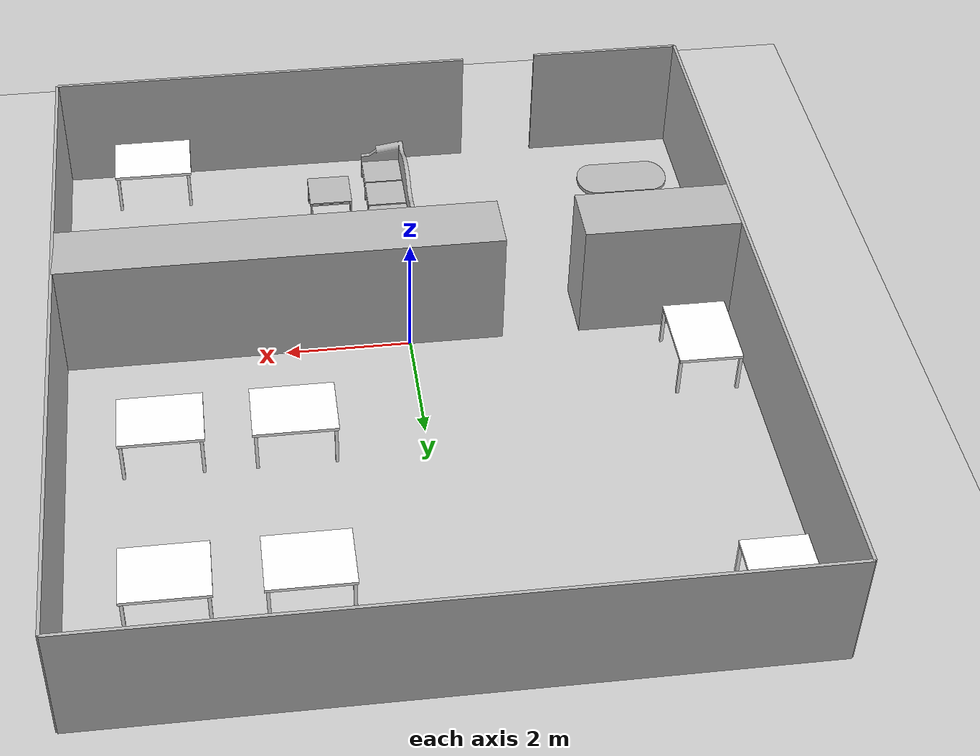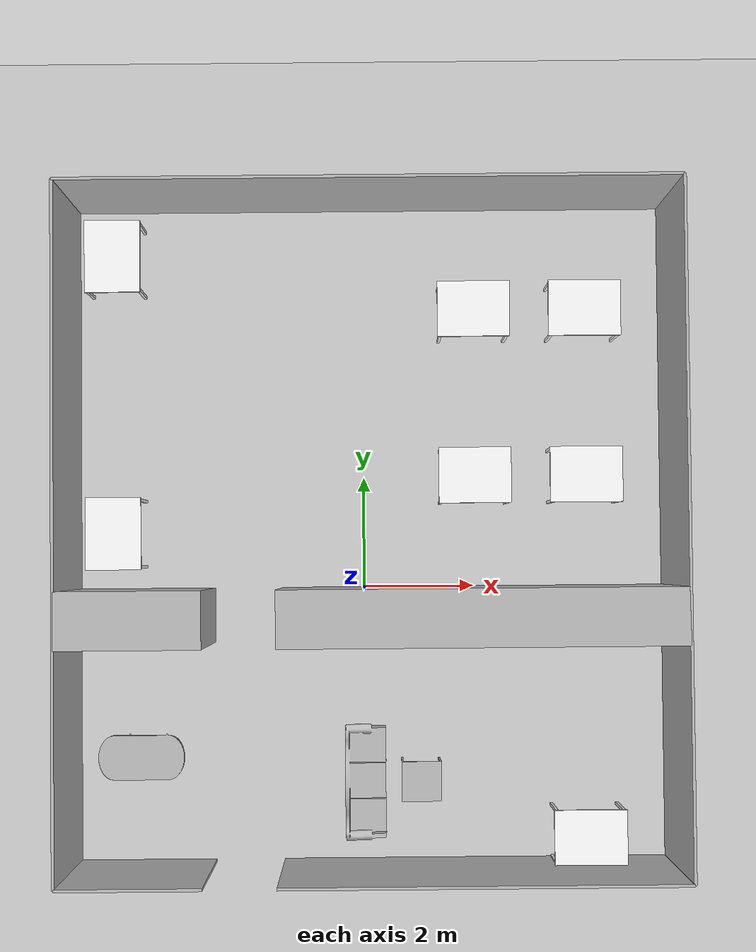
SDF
<sdf version="1.5">
 <world name="hri_hk_studio_world">
  <include><uri>model://sun</uri></include>
  <include><uri>model://ground_plane</uri></include>
  <include><uri>model://hri_hk_studio</uri><pose>2 -5 0 0 0 0</pose></include>
  <include><uri>model://hri_dinnertable</uri><pose>-4 -3 0 0 0 1.57</pose></include>
  <include><uri>model://hri_desk</uri><pose>-4.5 1 0 0 0 1.57</pose></include>
  <include><uri>model://hri_desk</uri><pose>-4.5 6 0 0 0 1.57</pose></include>
  <include><uri>model://hri_desk</uri><pose>2 2 0 0 0 0</pose></include>
  <include><uri>model://hri_desk</uri><pose>2 5 0 0 0 0</pose></include>
  <include><uri>model://hri_desk</uri><pose>4 2 0 0 0 0</pose></include>
  <include><uri>model://hri_desk</uri><pose>4 5 0 0 0 0</pose></include>
  <include><uri>model://hri_desk</uri><pose>4 -4.5 0 0 0 0</pose></include>
  <include><uri>model://hri_couch</uri><pose>0 -3.5 0 0 0 0</pose></include>
  <include><uri>model://hri_coffeetable</uri><pose>1 -3.5 0 0 0 0</pose></include>
 </world>
</sdf>

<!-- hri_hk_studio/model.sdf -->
<sdf version="1.4">
<model name="hri_hk_studio">
  <pose>0 0 0 0 0 0</pose>
  <static>true</static>

    <link name="wall1">
      <pose>0 0 1 0 0 0</pose>
      <inertial>
        <mass>1000.0</mass>
        <inertia> <!-- interias are tricky to compute -->
          <!-- http://answers.gazebosim.org/question/4372/the-inertia-matrix-explained/ -->
          <ixx>0.083</ixx>       <!-- for a box: ixx = 0.083 * mass * (y*y + z*z) -->
          <ixy>0.0</ixy>         <!-- for a box: ixy = 0 -->
          <ixz>0.0</ixz>         <!-- for a box: ixz = 0 -->
          <iyy>0.083</iyy>       <!-- for a box: iyy = 0.083 * mass * (x*x + z*z) -->
          <iyz>0.0</iyz>         <!-- for a box: iyz = 0 -->
          <izz>0.083</izz>       <!-- for a box: izz = 0.083 * mass * (x*x + y*y) -->
        </inertia>
      </inertial>
      <collision name="collision">
        <geometry>
          <box>
            <size>7.0    0.0500    2.0000</size>
          </box>
        </geometry>
      </collision>
      <visual name="visual">
        <geometry>
          <box>
            <size>7.0    0.0500    2.0000</size>
          </box>
        </geometry>
      </visual>
    </link>

    <link name="wall2">
      <pose>-6 0 1 0 0 0</pose>
      <inertial>
        <mass>1000.0</mass>
        <inertia> <!-- interias are tricky to compute -->
          <!-- http://answers.gazebosim.org/question/4372/the-inertia-matrix-explained/ -->
          <ixx>0.083</ixx>       <!-- for a box: ixx = 0.083 * mass * (y*y + z*z) -->
          <ixy>0.0</ixy>         <!-- for a box: ixy = 0 -->
          <ixz>0.0</ixz>         <!-- for a box: ixz = 0 -->
          <iyy>0.083</iyy>       <!-- for a box: iyy = 0.083 * mass * (x*x + z*z) -->
          <iyz>0.0</iyz>         <!-- for a box: iyz = 0 -->
          <izz>0.083</izz>       <!-- for a box: izz = 0.083 * mass * (x*x + y*y) -->
        </inertia>
      </inertial>
      <collision name="collision">
        <geometry>
          <box>
            <size>2.5    0.0500    2.0000</size>
          </box>
        </geometry>
      </collision>
      <visual name="visual">
        <geometry>
          <box>
            <size>2.5    0.0500    2.0000</size>
          </box>
        </geometry>
      </visual>
    </link>

    <link name="wall3">
      <pose>-7.25 6 1 0 0 0</pose>
      <inertial>
        <mass>1000.0</mass>
        <inertia> <!-- interias are tricky to compute -->
          <!-- http://answers.gazebosim.org/question/4372/the-inertia-matrix-explained/ -->
          <ixx>0.083</ixx>       <!-- for a box: ixx = 0.083 * mass * (y*y + z*z) -->
          <ixy>0.0</ixy>         <!-- for a box: ixy = 0 -->
          <ixz>0.0</ixz>         <!-- for a box: ixz = 0 -->
          <iyy>0.083</iyy>       <!-- for a box: iyy = 0.083 * mass * (x*x + z*z) -->
          <iyz>0.0</iyz>         <!-- for a box: iyz = 0 -->
          <izz>0.083</izz>       <!-- for a box: izz = 0.083 * mass * (x*x + y*y) -->
        </inertia>
      </inertial>
      <collision name="collision">
        <geometry>
          <box>
            <size>0.0500    12    2.0000</size>
          </box>
        </geometry>
      </collision>
      <visual name="visual">
        <geometry>
          <box>
            <size>0.0500    12    2.0000</size>
          </box>
        </geometry>
      </visual>
    </link>

    <link name="wall4">
      <pose>-6 4.5 1 0 0 0</pose>
      <inertial>
        <mass>1000.0</mass>
        <inertia> <!-- interias are tricky to compute -->
          <!-- http://answers.gazebosim.org/question/4372/the-inertia-matrix-explained/ -->
          <ixx>0.083</ixx>       <!-- for a box: ixx = 0.083 * mass * (y*y + z*z) -->
          <ixy>0.0</ixy>         <!-- for a box: ixy = 0 -->
          <ixz>0.0</ixz>         <!-- for a box: ixz = 0 -->
          <iyy>0.083</iyy>       <!-- for a box: iyy = 0.083 * mass * (x*x + z*z) -->
          <iyz>0.0</iyz>         <!-- for a box: iyz = 0 -->
          <izz>0.083</izz>       <!-- for a box: izz = 0.083 * mass * (x*x + y*y) -->
        </inertia>
      </inertial>
      <collision name="collision">
        <geometry>
          <box>
            <size>2.5    1    2.0000</size>
          </box>
        </geometry>
      </collision>
      <visual name="visual">
        <geometry>
          <box>
            <size>2.5    1    2.0000</size>
          </box>
        </geometry>
      </visual>
    </link>

    <link name="wall5">
      <pose>-1.875 12 1 0 0 0</pose>
      <inertial>
        <mass>1000.0</mass>
        <inertia> <!-- interias are tricky to compute -->
          <!-- http://answers.gazebosim.org/question/4372/the-inertia-matrix-explained/ -->
          <ixx>0.083</ixx>       <!-- for a box: ixx = 0.083 * mass * (y*y + z*z) -->
          <ixy>0.0</ixy>         <!-- for a box: ixy = 0 -->
          <ixz>0.0</ixz>         <!-- for a box: ixz = 0 -->
          <iyy>0.083</iyy>       <!-- for a box: iyy = 0.083 * mass * (x*x + z*z) -->
          <iyz>0.0</iyz>         <!-- for a box: iyz = 0 -->
          <izz>0.083</izz>       <!-- for a box: izz = 0.083 * mass * (x*x + y*y) -->
        </inertia>
      </inertial>
      <collision name="collision">
        <geometry>
          <box>
            <size>10.75    0.0500    2.0000</size>
          </box>
        </geometry>
      </collision>
      <visual name="visual">
        <geometry>
          <box>
            <size>10.75    0.0500    2.0000</size>
          </box>
        </geometry>
      </visual>
    </link>

    <link name="wall6">
      <pose>3.5 6 1 0 0 0</pose>
      <inertial>
        <mass>1000.0</mass>
        <inertia> <!-- interias are tricky to compute -->
          <!-- http://answers.gazebosim.org/question/4372/the-inertia-matrix-explained/ -->
          <ixx>0.083</ixx>       <!-- for a box: ixx = 0.083 * mass * (y*y + z*z) -->
          <ixy>0.0</ixy>         <!-- for a box: ixy = 0 -->
          <ixz>0.0</ixz>         <!-- for a box: ixz = 0 -->
          <iyy>0.083</iyy>       <!-- for a box: iyy = 0.083 * mass * (x*x + z*z) -->
          <iyz>0.0</iyz>         <!-- for a box: iyz = 0 -->
          <izz>0.083</izz>       <!-- for a box: izz = 0.083 * mass * (x*x + y*y) -->
        </inertia>
      </inertial>
      <collision name="collision">
        <geometry>
          <box>
            <size>0.0500    12    2.0000</size>
          </box>
        </geometry>
      </collision>
      <visual name="visual">
        <geometry>
          <box>
            <size>0.0500    12    2.0000</size>
          </box>
        </geometry>
      </visual>
    </link>

    <link name="wall7">
      <pose>0 4.5 1 0 0 0</pose>
      <inertial>
        <mass>1000.0</mass>
        <inertia> <!-- interias are tricky to compute -->
          <!-- http://answers.gazebosim.org/question/4372/the-inertia-matrix-explained/ -->
          <ixx>0.083</ixx>       <!-- for a box: ixx = 0.083 * mass * (y*y + z*z) -->
          <ixy>0.0</ixy>         <!-- for a box: ixy = 0 -->
          <ixz>0.0</ixz>         <!-- for a box: ixz = 0 -->
          <iyy>0.083</iyy>       <!-- for a box: iyy = 0.083 * mass * (x*x + z*z) -->
          <iyz>0.0</iyz>         <!-- for a box: iyz = 0 -->
          <izz>0.083</izz>       <!-- for a box: izz = 0.083 * mass * (x*x + y*y) -->
        </inertia>
      </inertial>
      <collision name="collision">
        <geometry>
          <box>
            <size>7    1    2.0000</size>
          </box>
        </geometry>
      </collision>
      <visual name="visual">
        <geometry>
          <box>
            <size>7    1    2.0000</size>
          </box>
        </geometry>
      </visual>
    </link>

  </model>
</sdf>

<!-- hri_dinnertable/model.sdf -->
<sdf version="1.4">
<model name="dinner table">
  <pose>0 0 0 0 0 0</pose>
  <static>true</static>
    <link name="link">
      <pose>0 0 0 0 0 0</pose>
      <inertial>
        <mass>1.0</mass>
        <inertia> <!-- interias are tricky to compute -->
          <!-- http://answers.gazebosim.org/question/4372/the-inertia-matrix-explained/ -->
          <ixx>0.083</ixx>       <!-- for a box: ixx = 0.083 * mass * (y*y + z*z) -->
          <ixy>0.0</ixy>         <!-- for a box: ixy = 0 -->
          <ixz>0.0</ixz>         <!-- for a box: ixz = 0 -->
          <iyy>0.083</iyy>       <!-- for a box: iyy = 0.083 * mass * (x*x + z*z) -->
          <iyz>0.0</iyz>         <!-- for a box: iyz = 0 -->
          <izz>0.083</izz>       <!-- for a box: izz = 0.083 * mass * (x*x + y*y) -->
        </inertia>
      </inertial>
      <collision name="collision">
	<pose>0 0 0 1.5708 0 0</pose>
        <geometry>
	  <mesh>
	    <uri>model://hri_dinnertable/meshes/dinnertable.dae</uri>
	    <scale>1 1 1</scale>
	  </mesh>
        </geometry>
      </collision>
      <visual name="visual">
	<pose>0 0 0 1.5708 0 0</pose>
        <geometry>
	  <mesh>
	    <uri>model://hri_dinnertable/meshes/dinnertable.dae</uri>
	    <scale>1 1 1</scale>
	  </mesh>
        </geometry>
      </visual>
    </link>
  </model>
</sdf>

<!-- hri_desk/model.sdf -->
<sdf version="1.4">
<model name="hri_desk">
  <pose>0 0 0 0 0 0</pose>
  <static>true</static>

    <link name="wall1">
      <pose>0 0 0.685 0 0 0</pose>
      <inertial>
        <mass>1000.0</mass>
        <inertia> <!-- interias are tricky to compute -->
          <!-- http://answers.gazebosim.org/question/4372/the-inertia-matrix-explained/ -->
          <ixx>0.083</ixx>       <!-- for a box: ixx = 0.083 * mass * (y*y + z*z) -->
          <ixy>0.0</ixy>         <!-- for a box: ixy = 0 -->
          <ixz>0.0</ixz>         <!-- for a box: ixz = 0 -->
          <iyy>0.083</iyy>       <!-- for a box: iyy = 0.083 * mass * (x*x + z*z) -->
          <iyz>0.0</iyz>         <!-- for a box: iyz = 0 -->
          <izz>0.083</izz>       <!-- for a box: izz = 0.083 * mass * (x*x + y*y) -->
        </inertia>
      </inertial>
      <collision name="collision">
        <geometry>
          <box>
            <size>1.3    1.0    0.05</size>
          </box>
        </geometry>
      </collision>
      <visual name="visual">
        <geometry>
          <box>
            <size>1.3    1.0    0.05</size>
          </box>
        </geometry>
	<material>
          <ambient>0.5 0.5 0.3 1</ambient>
          <diffuse>1 1 1 1</diffuse>
          <specular>0.1 0.1 0.1 1</specular>
          <emissive>0 0 0 0</emissive>
        </material>
      </visual>
    </link>

    <link name="wall2">
      <pose>0.6    0.475    0.33 0 0 0</pose>
      <inertial>
        <mass>1000.0</mass>
        <inertia> <!-- interias are tricky to compute -->
          <!-- http://answers.gazebosim.org/question/4372/the-inertia-matrix-explained/ -->
          <ixx>0.083</ixx>       <!-- for a box: ixx = 0.083 * mass * (y*y + z*z) -->
          <ixy>0.0</ixy>         <!-- for a box: ixy = 0 -->
          <ixz>0.0</ixz>         <!-- for a box: ixz = 0 -->
          <iyy>0.083</iyy>       <!-- for a box: iyy = 0.083 * mass * (x*x + z*z) -->
          <iyz>0.0</iyz>         <!-- for a box: iyz = 0 -->
          <izz>0.083</izz>       <!-- for a box: izz = 0.083 * mass * (x*x + y*y) -->
        </inertia>
      </inertial>
      <collision name="collision">
        <geometry>
          <box>
            <size>0.0500    0.0500    0.66</size>
          </box>
        </geometry>
      </collision>
      <visual name="visual">
        <geometry>
          <box>
            <size>0.0500    0.0500    0.66</size>
          </box>
        </geometry>
	<material>
          <ambient>1 1 0.5 1</ambient>
          <diffuse>1 1 1 1</diffuse>
          <specular>0.1 0.1 0.1 1</specular>
          <emissive>0 0 0 0</emissive>
        </material>
      </visual>
    </link>

    <link name="wall3">
      <pose>0.6    -0.475    0.33 0 0 0</pose>
      <inertial>
        <mass>1000.0</mass>
        <inertia> <!-- interias are tricky to compute -->
          <!-- http://answers.gazebosim.org/question/4372/the-inertia-matrix-explained/ -->
          <ixx>0.083</ixx>       <!-- for a box: ixx = 0.083 * mass * (y*y + z*z) -->
          <ixy>0.0</ixy>         <!-- for a box: ixy = 0 -->
          <ixz>0.0</ixz>         <!-- for a box: ixz = 0 -->
          <iyy>0.083</iyy>       <!-- for a box: iyy = 0.083 * mass * (x*x + z*z) -->
          <iyz>0.0</iyz>         <!-- for a box: iyz = 0 -->
          <izz>0.083</izz>       <!-- for a box: izz = 0.083 * mass * (x*x + y*y) -->
        </inertia>
      </inertial>
      <collision name="collision">
        <geometry>
          <box>
            <size>0.0500    0.0500    0.66</size>
          </box>
        </geometry>
      </collision>
      <visual name="visual">
        <geometry>
          <box>
            <size>0.0500    0.0500    0.66</size>
          </box>
        </geometry>
	<material>
          <ambient>1 1 0.5 1</ambient>
          <diffuse>1 1 1 1</diffuse>
          <specular>0.1 0.1 0.1 1</specular>
          <emissive>0 0 0 0</emissive>
        </material>
      </visual>
    </link>

    <link name="wall4">
      <pose>-0.6    -0.475    0.33 0 0 0</pose>
      <inertial>
        <mass>1000.0</mass>
        <inertia> <!-- interias are tricky to compute -->
          <!-- http://answers.gazebosim.org/question/4372/the-inertia-matrix-explained/ -->
          <ixx>0.083</ixx>       <!-- for a box: ixx = 0.083 * mass * (y*y + z*z) -->
          <ixy>0.0</ixy>         <!-- for a box: ixy = 0 -->
          <ixz>0.0</ixz>         <!-- for a box: ixz = 0 -->
          <iyy>0.083</iyy>       <!-- for a box: iyy = 0.083 * mass * (x*x + z*z) -->
          <iyz>0.0</iyz>         <!-- for a box: iyz = 0 -->
          <izz>0.083</izz>       <!-- for a box: izz = 0.083 * mass * (x*x + y*y) -->
        </inertia>
      </inertial>
      <collision name="collision">
        <geometry>
          <box>
            <size>0.0500    0.0500    0.66</size>
          </box>
        </geometry>
      </collision>
      <visual name="visual">
        <geometry>
          <box>
            <size>0.0500    0.0500    0.66</size>
          </box>
        </geometry>
	<material>
          <ambient>1 1 0.5 1</ambient>
          <diffuse>1 1 1 1</diffuse>
          <specular>0.1 0.1 0.1 1</specular>
          <emissive>0 0 0 0</emissive>
        </material>
      </visual>
    </link>

    <link name="wall5">
      <pose>-0.6    0.475    0.33 0 0 0</pose>
      <inertial>
        <mass>1000.0</mass>
        <inertia> <!-- interias are tricky to compute -->
          <!-- http://answers.gazebosim.org/question/4372/the-inertia-matrix-explained/ -->
          <ixx>0.083</ixx>       <!-- for a box: ixx = 0.083 * mass * (y*y + z*z) -->
          <ixy>0.0</ixy>         <!-- for a box: ixy = 0 -->
          <ixz>0.0</ixz>         <!-- for a box: ixz = 0 -->
          <iyy>0.083</iyy>       <!-- for a box: iyy = 0.083 * mass * (x*x + z*z) -->
          <iyz>0.0</iyz>         <!-- for a box: iyz = 0 -->
          <izz>0.083</izz>       <!-- for a box: izz = 0.083 * mass * (x*x + y*y) -->
        </inertia>
      </inertial>
      <collision name="collision">
        <geometry>
          <box>
            <size>0.0500    0.0500    0.66</size>
          </box>
        </geometry>
      </collision>
      <visual name="visual">
        <geometry>
          <box>
            <size>0.0500    0.0500    0.66</size>
          </box>
        </geometry>
	<material>
          <ambient>1 1 0.5 1</ambient>
          <diffuse>1 1 1 1</diffuse>
          <specular>0.1 0.1 0.1 1</specular>
          <emissive>0 0 0 0</emissive>
        </material>
      </visual>
    </link>

  </model>
</sdf>

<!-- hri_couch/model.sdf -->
<sdf version="1.4">
<model name="couch">
  <pose>0 0 0 0 0 0</pose>
  <static>true</static>
    <link name="link">
      <pose>0 0 0 0 0 0</pose>
      <inertial>
        <mass>1.0</mass>
        <inertia> <!-- interias are tricky to compute -->
          <!-- http://answers.gazebosim.org/question/4372/the-inertia-matrix-explained/ -->
          <ixx>0.083</ixx>       <!-- for a box: ixx = 0.083 * mass * (y*y + z*z) -->
          <ixy>0.0</ixy>         <!-- for a box: ixy = 0 -->
          <ixz>0.0</ixz>         <!-- for a box: ixz = 0 -->
          <iyy>0.083</iyy>       <!-- for a box: iyy = 0.083 * mass * (x*x + z*z) -->
          <iyz>0.0</iyz>         <!-- for a box: iyz = 0 -->
          <izz>0.083</izz>       <!-- for a box: izz = 0.083 * mass * (x*x + y*y) -->
        </inertia>
      </inertial>
      <collision name="collision">
	<pose>0 0 0 1.5708 0 0</pose>
        <geometry>
	  <mesh>
	    <uri>model://hri_couch/meshes/couch.dae</uri>
	    <scale>1 1 1</scale>
	  </mesh>
        </geometry>
      </collision>
      <visual name="visual">
	<pose>0 0 0 1.5708 0 0</pose>
        <geometry>
	  <mesh>
	    <uri>model://hri_couch/meshes/couch.dae</uri>
	    <scale>1 1 1</scale>
	  </mesh>
        </geometry>
      </visual>
    </link>
  </model>
</sdf>

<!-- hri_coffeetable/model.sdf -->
<sdf version="1.4">
<model name="coffee table">
  <pose>0 0 0 0 0 0</pose>
  <static>true</static>
    <link name="link">
      <pose>0 0 0 0 0 0</pose>
      <inertial>
        <mass>1.0</mass>
        <inertia> <!-- interias are tricky to compute -->
          <!-- http://answers.gazebosim.org/question/4372/the-inertia-matrix-explained/ -->
          <ixx>0.083</ixx>       <!-- for a box: ixx = 0.083 * mass * (y*y + z*z) -->
          <ixy>0.0</ixy>         <!-- for a box: ixy = 0 -->
          <ixz>0.0</ixz>         <!-- for a box: ixz = 0 -->
          <iyy>0.083</iyy>       <!-- for a box: iyy = 0.083 * mass * (x*x + z*z) -->
          <iyz>0.0</iyz>         <!-- for a box: iyz = 0 -->
          <izz>0.083</izz>       <!-- for a box: izz = 0.083 * mass * (x*x + y*y) -->
        </inertia>
      </inertial>
      <collision name="collision">
	<pose>0 0 0 1.5708 0 0</pose>
        <geometry>
	  <mesh>
	    <uri>model://hri_coffeetable/meshes/coffeetable.dae</uri>
	    <scale>1 1 1</scale>
	  </mesh>
        </geometry>
      </collision>
      <visual name="visual">
	<pose>0 0 0 1.5708 0 0</pose>
        <geometry>
	  <mesh>
	    <uri>model://hri_coffeetable/meshes/coffeetable.dae</uri>
	    <scale>1 1 1</scale>
	  </mesh>
        </geometry>
      </visual>
    </link>
  </model>
</sdf>
